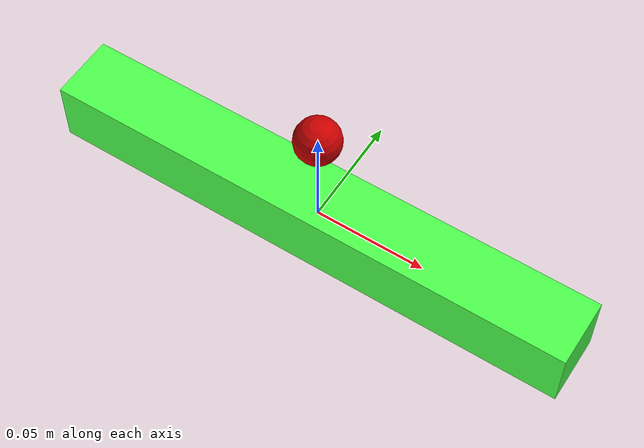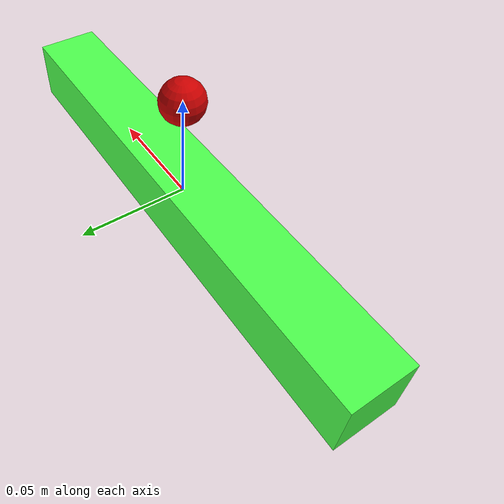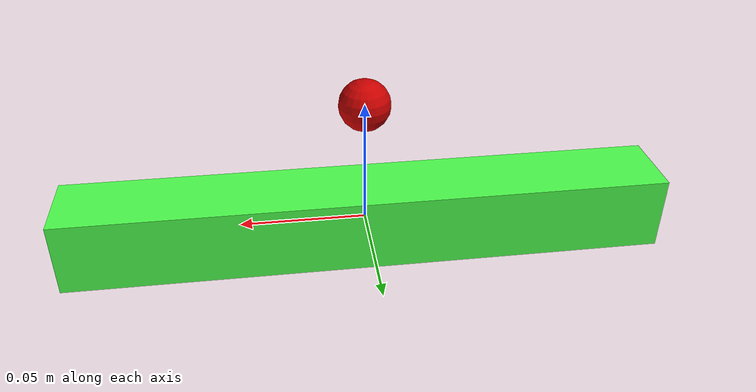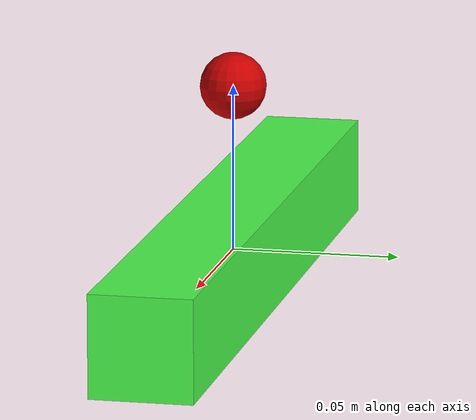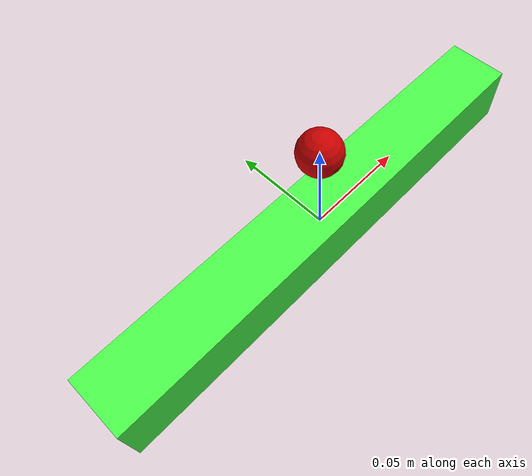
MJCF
<mujoco model="peg">
    <compiler angle="radian" inertiafromgeom="auto" inertiagrouprange="4 5"/>

    <asset>
      <texture name="T_peg_wood" type="cube" file="../textures/wood1.png"/>

      <material name="peg_col" rgba="0.3 0.3 1.0 0.5" shininess="0" specular="0"/>
      <material name="peg_green" rgba="0 .5 0 1" shininess="1" reflectance=".7" specular=".5"/>
      <material name="peg_black" rgba=".15 .15 .15 1" shininess="1" reflectance=".7" specular=".5"/>
      <material name="peg_wood" rgba=".55 .55 .55 1" texture="T_peg_wood" shininess="1" reflectance=".7" specular=".5"/>
    </asset>
    <default>
      <default class="peg_base">
          <geom conaffinity="0" contype="0" group="1" type="mesh"/>
          <default class="peg_col">
              <geom conaffinity="1" condim="3" contype="1" group="4" material="peg_col" solimp="0.99 0.99 0.01" solref="0.01 1"/>
          </default>

      </default>
    </default>

    <worldbody>
        <body name="peg">
          <inertial pos="0 0 0" mass="0.1" diaginertia="100000 100000 100000"/>
          <geom name="peg" euler="0 1.57 0" size="0.015 0.015 0.12" type="box" mass=".1" rgba="0.3 1 0.3 1" conaffinity="1" contype="1" group="1"/>
          <joint type="free" limited="false" damping="0.005"/>
          <site name="pegHead" pos="-0.1 0 0" size="0.005" rgba="0.8 0 0 1"/>
          <site name="pegEnd" pos="0.1 0 0" size="0.005" rgba="0.8 0 0 1"/>
          <site name="pegGrasp" pos=".03 .0 .01" size="0.005" rgba="0.8 0 0 1"/>
        </body>
        <site name="goal" pos="0 0 0.05" size="0.01" rgba="0.8 0 0 1"/>
    </worldbody>
</mujoco>
